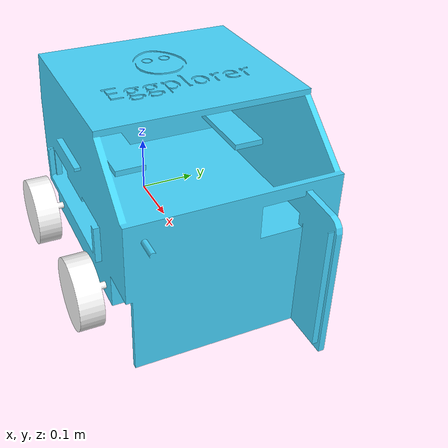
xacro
<?xml version="1.0"?>
<robot xmlns:xacro="http://www.ros.org/wiki/xacro" >
  <link
    name="base_footprint">
    <inertial>
      <origin
        xyz="0.15521 0.0047713 0.11239"
        rpy="0 0 0" />
      <mass
        value="13.197" />
      <inertia
        ixx="0.30179"
        ixy="-0.0077769"
        ixz="0.031851"
        iyy="0.35574"
        iyz="0.002234"
        izz="0.407" />
    </inertial>
    <visual>
      <origin
        xyz="0 0 0"
        rpy="0 0 0" />
      <geometry>
        <mesh
          filename="package://eggplorer/meshes/base_footprint.STL" />
      </geometry>
      <material
        name="">
        <color
          rgba="0.27843 0.83922 1 1" />
      </material>
    </visual>
    <collision>
      <origin
        xyz="0 0 0"
        rpy="0 0 0" />
      <geometry>
        <mesh
          filename="package://eggplorer/meshes/base_footprint.STL" />
      </geometry>
    </collision>
  </link>
  <link
    name="rueda_der">
    <inertial>
      <origin
        xyz="0 8.3102E-05 2.7756E-17"
        rpy="0 0 0" />
      <mass
        value="0.46272" />
      <inertia
        ixx="0.00047803"
        ixy="4.5691E-23"
        ixz="4.6062E-21"
        iyy="0.00083062"
        iyz="-2.4628E-18"
        izz="0.00047803" />
    </inertial>
    <visual>
      <origin
        xyz="0 0 0"
        rpy="0 0 0" />
      <geometry>
        <mesh
          filename="package://eggplorer/meshes/rueda_der.STL" />
      </geometry>
      <material
        name="">
        <color
          rgba="1 1 1 1" />
      </material>
    </visual>
    <collision>
      <origin
        xyz="0 0 0"
        rpy="0 0 0" />
      <geometry>
        <mesh
          filename="package://eggplorer/meshes/rueda_der.STL" />
      </geometry>
    </collision>
  </link>
  <joint
    name="rueda_der_joint"
    type="continuous">
    <origin
      xyz="0 -0.201 0"
      rpy="0 0 0" />
    <parent
      link="base_footprint" />
    <child
      link="rueda_der" />
    <axis
      xyz="0 -1 0" />
  </joint>
  <link
    name="polea_der">
    <inertial>
      <origin
        xyz="0 8.3102E-05 2.7756E-17"
        rpy="0 0 0" />
      <mass
        value="0.46272" />
      <inertia
        ixx="0.00047803"
        ixy="9.4852E-21"
        ixz="-4.5944E-21"
        iyy="0.00083062"
        iyz="-2.4628E-18"
        izz="0.00047803" />
    </inertial>
    <visual>
      <origin
        xyz="0 0 0"
        rpy="0 0 0" />
      <geometry>
        <mesh
          filename="package://eggplorer/meshes/polea_der.STL" />
      </geometry>
      <material
        name="">
        <color
          rgba="1 1 1 1" />
      </material>
    </visual>
    <collision>
      <origin
        xyz="0 0 0"
        rpy="0 0 0" />
      <geometry>
        <mesh
          filename="package://eggplorer/meshes/polea_der.STL" />
      </geometry>
    </collision>
  </link>
  <joint
    name="polea_der_joint"
    type="continuous">
    <origin
      xyz="0.245 -0.201 0"
      rpy="0 0 0" />
    <parent
      link="base_footprint" />
    <child
      link="polea_der" />
    <axis
      xyz="0 -1 0" />
  </joint>
  <link
    name="rueda_izq">
    <inertial>
      <origin
        xyz="0 -8.3102E-05 2.7756E-17"
        rpy="0 0 0" />
      <mass
        value="0.46272" />
      <inertia
        ixx="0.00047803"
        ixy="3.4841E-23"
        ixz="4.6008E-21"
        iyy="0.00083062"
        iyz="-5.3899E-22"
        izz="0.00047803" />
    </inertial>
    <visual>
      <origin
        xyz="0 0 0"
        rpy="0 0 0" />
      <geometry>
        <mesh
          filename="package://eggplorer/meshes/rueda_izq.STL" />
      </geometry>
      <material
        name="">
        <color
          rgba="1 1 1 1" />
      </material>
    </visual>
    <collision>
      <origin
        xyz="0 0 0"
        rpy="0 0 0" />
      <geometry>
        <mesh
          filename="package://eggplorer/meshes/rueda_izq.STL" />
      </geometry>
    </collision>
  </link>
  <joint
    name="rueda_izq_joint"
    type="continuous">
    <origin
      xyz="0 0.201 0"
      rpy="0 0 0" />
    <parent
      link="base_footprint" />
    <child
      link="rueda_izq" />
    <axis
      xyz="0 1 0" />
  </joint>
  <link
    name="polea_izq">
    <inertial>
      <origin
        xyz="0 -8.3102E-05 2.7756E-17"
        rpy="0 0 0" />
      <mass
        value="0.46272" />
      <inertia
        ixx="0.00047803"
        ixy="-6.275E-21"
        ixz="9.1986E-21"
        iyy="0.00083062"
        iyz="-5.3899E-22"
        izz="0.00047803" />
    </inertial>
    <visual>
      <origin
        xyz="0 0 0"
        rpy="0 0 0" />
      <geometry>
        <mesh
          filename="package://eggplorer/meshes/polea_izq.STL" />
      </geometry>
      <material
        name="">
        <color
          rgba="1 1 1 1" />
      </material>
    </visual>
    <collision>
      <origin
        xyz="0 0 0"
        rpy="0 0 0" />
      <geometry>
        <mesh
          filename="package://eggplorer/meshes/polea_izq.STL" />
      </geometry>
    </collision>
  </link>
  <joint
    name="polea_izq_joint"
    type="continuous">
    <origin
      xyz="0.245 0.201 0"
      rpy="0 0 0" />
    <parent
      link="base_footprint" />
    <child
      link="polea_izq" />
    <axis
      xyz="0 1 0" />
  </joint>
</robot>
